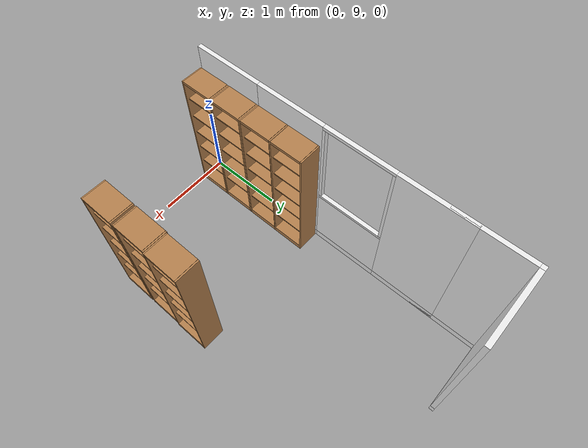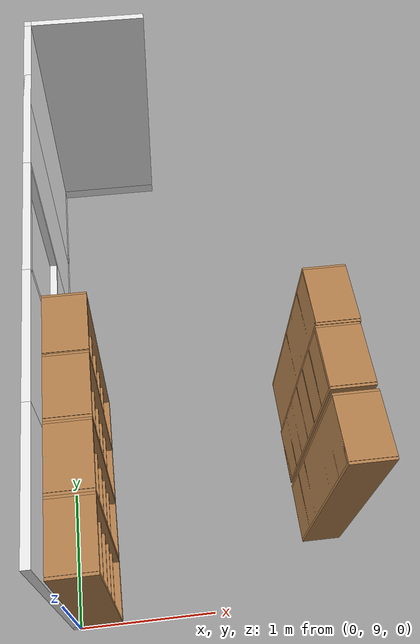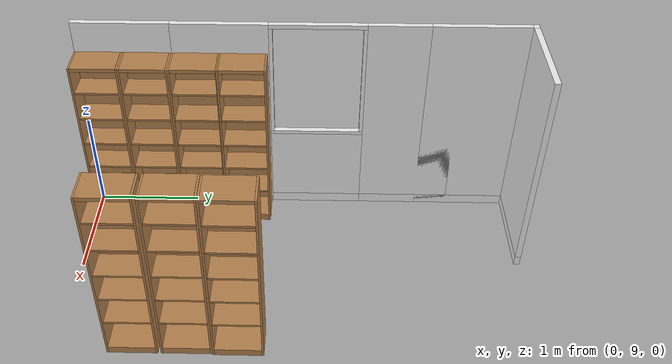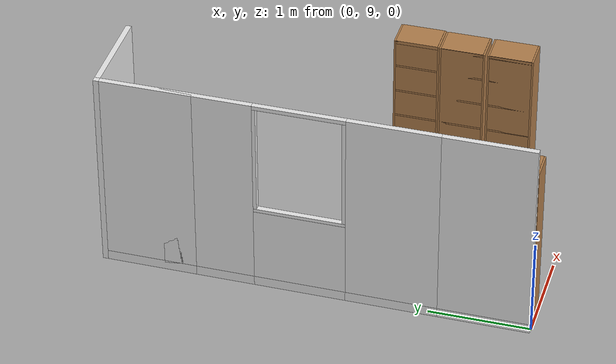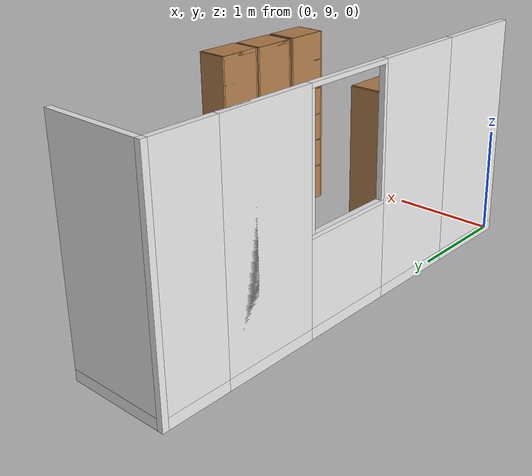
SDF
<sdf version="1.6">
 <world name="robocup_apartment">
  <model name="wall_x00y11">
   <link name="link">
    <inertial>
     <mass>50</mass>
     <inertia><ixx>1</ixx><ixy>0</ixy><ixz>0</ixz><iyy>1</iyy><iyz>0</iyz><izz>1</izz></inertia>
    </inertial>
    <visual name="bottom_frame">
     <pose>0 0 0.05 0 -0 0</pose>
     <geometry><box><size>0.055 0.9 0.1</size></box></geometry>
     <material>
      <script><uri>model://base_materials/color/scripts</uri><name>hsr_color/white</name></script>
     </material>
    </visual>
    <visual name="wall">
     <pose>0 0 1.095 0 -0 0</pose>
     <geometry><box><size>0.055 0.9 1.99</size></box></geometry>
     <material>
      <script>
       <uri>model://base_materials/wall/scripts</uri>
       <uri>model://base_materials/wall/textures</uri>
       <name>wall/white_noise</name>
      </script>
     </material>
    </visual>
    <velocity_decay><linear>0</linear><angular>0</angular></velocity_decay>
   </link>
   <static>1</static>
   <pose>-0.0275 9.45 0 0 -0 0</pose>
  </model>
  <model name="wall_x00y12">
   <link name="link">
    <inertial>
     <mass>50</mass>
     <inertia><ixx>1</ixx><ixy>0</ixy><ixz>0</ixz><iyy>1</iyy><iyz>0</iyz><izz>1</izz></inertia>
    </inertial>
    <visual name="bottom_frame">
     <pose>0 0 0.05 0 -0 0</pose>
     <geometry><box><size>0.055 0.9 0.1</size></box></geometry>
     <material>
      <script><uri>model://base_materials/color/scripts</uri><name>hsr_color/white</name></script>
     </material>
    </visual>
    <visual name="wall">
     <pose>0 0 1.095 0 -0 0</pose>
     <geometry><box><size>0.055 0.9 1.99</size></box></geometry>
     <material>
      <script>
       <uri>model://base_materials/wall/scripts</uri>
       <uri>model://base_materials/wall/textures</uri>
       <name>wall/white_noise</name>
      </script>
     </material>
    </visual>
    <velocity_decay><linear>0</linear><angular>0</angular></velocity_decay>
   </link>
   <static>1</static>
   <pose>-0.0275 10.35 0 0 -0 0</pose>
  </model>
  <model name="wall_x00y13">
   <link name="link">
    <inertial>
     <mass>50</mass>
     <inertia><ixx>1</ixx><ixy>0</ixy><ixz>0</ixz><iyy>1</iyy><iyz>0</iyz><izz>1</izz></inertia>
    </inertial>
    <visual name="bottom_frame">
     <pose>0 0 0.05 0 -0 0</pose>
     <geometry><box><size>0.055 0.9 0.1</size></box></geometry>
     <material>
      <script><uri>model://base_materials/color/scripts</uri><name>hsr_color/white</name></script>
     </material>
    </visual>
    <visual name="wall">
     <pose>0 0 0.4875 0 -0 0</pose>
     <geometry><box><size>0.055 0.9 0.775</size></box></geometry>
     <material>
      <script>
       <uri>model://base_materials/wall/scripts</uri>
       <uri>model://base_materials/wall/textures</uri>
       <name>wall/white_noise</name>
      </script>
     </material>
    </visual>
    <visual name="center_frame">
     <pose>0 0 0.8925 0 -0 0</pose>
     <geometry><box><size>0.055 0.9 0.035</size></box></geometry>
     <material>
      <script><uri>model://base_materials/color/scripts</uri><name>hsr_color/white</name></script>
     </material>
    </visual>
    <visual name="right_frame">
     <pose>0 0.4325 1.48 0 -0 0</pose>
     <geometry><box><size>0.055 0.035 1.14</size></box></geometry>
     <material>
      <script><uri>model://base_materials/color/scripts</uri><name>hsr_color/white</name></script>
     </material>
    </visual>
    <visual name="left_frame">
     <pose>0 -0.4325 1.48 0 -0 0</pose>
     <geometry><box><size>0.055 0.035 1.14</size></box></geometry>
     <material>
      <script><uri>model://base_materials/color/scripts</uri><name>hsr_color/white</name></script>
     </material>
    </visual>
    <visual name="top_frame">
     <pose>0 0 2.07 0 -0 0</pose>
     <geometry><box><size>0.055 0.9 0.04</size></box></geometry>
     <material>
      <script><uri>model://base_materials/color/scripts</uri><name>hsr_color/white</name></script>
     </material>
    </visual>
    <velocity_decay><linear>0</linear><angular>0</angular></velocity_decay>
   </link>
   <static>1</static>
   <pose>-0.0275 11.25 0 0 -0 0</pose>
  </model>
  <model name="wall_x00y14">
   <link name="link">
    <inertial>
     <mass>50</mass>
     <inertia><ixx>1</ixx><ixy>0</ixy><ixz>0</ixz><iyy>1</iyy><iyz>0</iyz><izz>1</izz></inertia>
    </inertial>
    <visual name="bottom_frame">
     <pose>0 0 0.05 0 -0 0</pose>
     <geometry><box><size>0.055 0.9 0.1</size></box></geometry>
     <material>
      <script><uri>model://base_materials/color/scripts</uri><name>hsr_color/white</name></script>
     </material>
    </visual>
    <visual name="wall">
     <pose>0 0 1.095 0 -0 0</pose>
     <geometry><box><size>0.055 0.9 1.99</size></box></geometry>
     <material>
      <script>
       <uri>model://base_materials/wall/scripts</uri>
       <uri>model://base_materials/wall/textures</uri>
       <name>wall/white_noise</name>
      </script>
     </material>
    </visual>
    <velocity_decay><linear>0</linear><angular>0</angular></velocity_decay>
   </link>
   <static>1</static>
   <pose>-0.0275 12.15 0 0 -0 0</pose>
  </model>
  <model name="wall_x00y15">
   <link name="link">
    <inertial>
     <mass>50</mass>
     <inertia><ixx>1</ixx><ixy>0</ixy><ixz>0</ixz><iyy>1</iyy><iyz>0</iyz><izz>1</izz></inertia>
    </inertial>
    <visual name="bottom_frame">
     <pose>0 0 0.05 0 -0 0</pose>
     <geometry><box><size>0.055 0.9 0.1</size></box></geometry>
     <material>
      <script><uri>model://base_materials/color/scripts</uri><name>hsr_color/white</name></script>
     </material>
    </visual>
    <visual name="wall">
     <pose>0 0 1.095 0 -0 0</pose>
     <geometry><box><size>0.055 0.9 1.99</size></box></geometry>
     <material>
      <script>
       <uri>model://base_materials/wall/scripts</uri>
       <uri>model://base_materials/wall/textures</uri>
       <name>wall/white_noise</name>
      </script>
     </material>
    </visual>
    <velocity_decay><linear>0</linear><angular>0</angular></velocity_decay>
   </link>
   <static>1</static>
   <pose>-0.0275 12.73 0 0 -0 0</pose>
  </model>
  <model name="wall_x00y16">
   <link name="link">
    <inertial>
     <mass>50</mass>
     <inertia><ixx>1</ixx><ixy>0</ixy><ixz>0</ixz><iyy>1</iyy><iyz>0</iyz><izz>1</izz></inertia>
    </inertial>
    <visual name="_frame">
     <pose>0 0 1.045 0 -0 0</pose>
     <geometry><box><size>0.055 0.055 2.09</size></box></geometry>
     <material>
      <script><uri>model://base_materials/color/scripts</uri><name>hsr_color/white</name></script>
     </material>
    </visual>
    <velocity_decay><linear>0</linear><angular>0</angular></velocity_decay>
   </link>
   <static>1</static>
   <pose>-0.0275 13.2075 0 0 -0 0</pose>
  </model>
  <model name="wall_x01y16">
   <link name="link">
    <inertial>
     <mass>50</mass>
     <inertia><ixx>1</ixx><ixy>0</ixy><ixz>0</ixz><iyy>1</iyy><iyz>0</iyz><izz>1</izz></inertia>
    </inertial>
    <visual name="bottom_frame">
     <pose>0 0 0.05 0 -0 0</pose>
     <geometry><box><size>0.055 0.9 0.1</size></box></geometry>
     <material>
      <script><uri>model://base_materials/color/scripts</uri><name>hsr_color/white</name></script>
     </material>
    </visual>
    <visual name="wall">
     <pose>0 0 1.095 0 -0 0</pose>
     <geometry><box><size>0.055 0.9 1.99</size></box></geometry>
     <material>
      <script>
       <uri>model://base_materials/wall/scripts</uri>
       <uri>model://base_materials/wall/textures</uri>
       <name>wall/white_noise</name>
      </script>
     </material>
    </visual>
    <velocity_decay><linear>0</linear><angular>0</angular></velocity_decay>
   </link>
   <static>1</static>
   <pose>0.45 13.2075 0 0 -0 1.5708</pose>
  </model>
  <model name="high_shelf05">
   <link name="link">
    <inertial>
     <mass>5</mass>
     <inertia><ixx>1</ixx><ixy>0</ixy><ixz>0</ixz><iyy>1</iyy><iyz>0</iyz><izz>1</izz></inertia>
    </inertial>
    <visual name="left_board">
     <pose>-0.1475 0.009 0.898 0 -0 0</pose>
     <geometry><box><size>0.295 0.018 1.796</size></box></geometry>
     <material>
      <script>
       <uri>model://base_materials/wood/scripts</uri>
       <uri>model://base_materials/wood/textures</uri>
       <name>base_materials/light_wood</name>
      </script>
     </material>
    </visual>
    <collision name="collision_left_board">
     <pose>-0.1475 0.009 0.898 0 -0 0</pose>
     <geometry><box><size>0.295 0.018 1.796</size></box></geometry>
    </collision>
    <visual name="right_board">
     <pose>-0.1475 0.441 0.898 0 -0 0</pose>
     <geometry><box><size>0.295 0.018 1.796</size></box></geometry>
     <material>
      <script>
       <uri>model://base_materials/wood/scripts</uri>
       <uri>model://base_materials/wood/textures</uri>
       <name>base_materials/light_wood</name>
      </script>
     </material>
    </visual>
    <collision name="collision_right_board">
     <pose>-0.1475 0.441 0.898 0 -0 0</pose>
     <geometry><box><size>0.295 0.018 1.796</size></box></geometry>
    </collision>
    <visual name="top_board">
     <pose>-0.1475 0.225 1.7825 0 -0 0</pose>
     <geometry><box><size>0.295 0.414 0.035</size></box></geometry>
     <material>
      <script>
       <uri>model://base_materials/wood/scripts</uri>
       <uri>model://base_materials/wood/textures</uri>
       <name>base_materials/light_wood</name>
      </script>
     </material>
    </visual>
    <collision name="collision_top_board">
     <pose>-0.1475 0.225 1.7825 0 -0 0</pose>
     <geometry><box><size>0.295 0.414 0.035</size></box></geometry>
    </collision>
    <visual name="1st_shelf">
     <pose>-0.162 0.225 1.51 0 -0 0</pose>
     <geometry><box><size>0.266 0.414 0.018</size></box></geometry>
     <material>
      <script>
       <uri>model://base_materials/wood/scripts</uri>
       <uri>model://base_materials/wood/textures</uri>
       <name>base_materials/light_wood</name>
      </script>
     </material>
    </visual>
    <collision name="collision_1st_shelf">
     <pose>-0.162 0.225 1.51 0 -0 0</pose>
     <geometry><box><size>0.266 0.414 0.018</size></box></geometry>
    </collision>
    <visual name="2nd_shelf">
     <pose>-0.162 0.225 1.22 0 -0 0</pose>
     <geometry><box><size>0.266 0.414 0.018</size></box></geometry>
     <material>
      <script>
       <uri>model://base_materials/wood/scripts</uri>
       <uri>model://base_materials/wood/textures</uri>
       <name>base_materials/light_wood</name>
      </script>
     </material>
    </visual>
    <collision name="collision_2nd_shelf">
     <pose>-0.162 0.225 1.22 0 -0 0</pose>
     <geometry><box><size>0.266 0.414 0.018</size></box></geometry>
    </collision>
    <visual name="3rd_shelf">
     <pose>-0.162 0.225 0.93 0 -0 0</pose>
     <geometry><box><size>0.266 0.414 0.018</size></box></geometry>
     <material>
      <script>
       <uri>model://base_materials/wood/scripts</uri>
       <uri>model://base_materials/wood/textures</uri>
       <name>base_materials/light_wood</name>
      </script>
     </material>
    </visual>
    <collision name="collision_3rd_shelf">
     <pose>-0.162 0.225 0.93 0 -0 0</pose>
     <geometry><box><size>0.266 0.414 0.018</size></box></geometry>
    </collision>
    <visual name="4th_shelf">
     <pose>-0.162 0.225 0.65 0 -0 0</pose>
     <geometry><box><size>0.266 0.414 0.018</size></box></geometry>
     <material>
      <script>
       <uri>model://base_materials/wood/scripts</uri>
       <uri>model://base_materials/wood/textures</uri>
       <name>base_materials/light_wood</name>
      </script>
     </material>
    </visual>
    <collision name="collision_4th_shelf">
     <pose>-0.162 0.225 0.65 0 -0 0</pose>
     <geometry><box><size>0.266 0.414 0.018</size></box></geometry>
    </collision>
    <visual name="5th_shelf">
     <pose>-0.162 0.225 0.36 0 -0 0</pose>
     <geometry><box><size>0.266 0.414 0.018</size></box></geometry>
     <material>
      <script>
       <uri>model://base_materials/wood/scripts</uri>
       <uri>model://base_materials/wood/textures</uri>
       <name>base_materials/light_wood</name>
      </script>
     </material>
    </visual>
    <collision name="collision_5th_shelf">
     <pose>-0.162 0.225 0.36 0 -0 0</pose>
     <geometry><box><size>0.266 0.414 0.018</size></box></geometry>
    </collision>
    <visual name="bottom_board">
     <pose>-0.1475 0.225 0.035 0 -0 0</pose>
     <geometry><box><size>0.295 0.414 0.07</size></box></geometry>
     <material>
      <script>
       <uri>model://base_materials/wood/scripts</uri>
       <uri>model://base_materials/wood/textures</uri>
       <name>base_materials/light_wood</name>
      </script>
     </material>
    </visual>
    <collision name="collision_bottom_board">
     <pose>-0.1475 0.225 0.035 0 -0 0</pose>
     <geometry><box><size>0.295 0.414 0.07</size></box></geometry>
    </collision>
    <visual name="back_board">
     <pose>-0.286 0.225 0.898 0 -0 0</pose>
     <geometry><box><size>0.018 0.414 1.796</size></box></geometry>
     <material>
      <script>
       <uri>model://base_materials/wood/scripts</uri>
       <uri>model://base_materials/wood/textures</uri>
       <name>base_materials/light_wood</name>
      </script>
     </material>
    </visual>
    <collision name="collision_back_board">
     <pose>-0.286 0.225 0.898 0 -0 0</pose>
     <geometry><box><size>0.018 0.414 1.796</size></box></geometry>
    </collision>
    <velocity_decay><linear>0</linear><angular>0</angular></velocity_decay>
   </link>
   <static>1</static>
   <pose>0.31 9 0 0 -0 0</pose>
  </model>
  <model name="high_shelf06">
   <link name="link">
    <inertial>
     <mass>5</mass>
     <inertia><ixx>1</ixx><ixy>0</ixy><ixz>0</ixz><iyy>1</iyy><iyz>0</iyz><izz>1</izz></inertia>
    </inertial>
    <visual name="left_board">
     <pose>-0.1475 0.009 0.898 0 -0 0</pose>
     <geometry><box><size>0.295 0.018 1.796</size></box></geometry>
     <material>
      <script>
       <uri>model://base_materials/wood/scripts</uri>
       <uri>model://base_materials/wood/textures</uri>
       <name>base_materials/light_wood</name>
      </script>
     </material>
    </visual>
    <collision name="collision_left_board">
     <pose>-0.1475 0.009 0.898 0 -0 0</pose>
     <geometry><box><size>0.295 0.018 1.796</size></box></geometry>
    </collision>
    <visual name="right_board">
     <pose>-0.1475 0.441 0.898 0 -0 0</pose>
     <geometry><box><size>0.295 0.018 1.796</size></box></geometry>
     <material>
      <script>
       <uri>model://base_materials/wood/scripts</uri>
       <uri>model://base_materials/wood/textures</uri>
       <name>base_materials/light_wood</name>
      </script>
     </material>
    </visual>
    <collision name="collision_right_board">
     <pose>-0.1475 0.441 0.898 0 -0 0</pose>
     <geometry><box><size>0.295 0.018 1.796</size></box></geometry>
    </collision>
    <visual name="top_board">
     <pose>-0.1475 0.225 1.7825 0 -0 0</pose>
     <geometry><box><size>0.295 0.414 0.035</size></box></geometry>
     <material>
      <script>
       <uri>model://base_materials/wood/scripts</uri>
       <uri>model://base_materials/wood/textures</uri>
       <name>base_materials/light_wood</name>
      </script>
     </material>
    </visual>
    <collision name="collision_top_board">
     <pose>-0.1475 0.225 1.7825 0 -0 0</pose>
     <geometry><box><size>0.295 0.414 0.035</size></box></geometry>
    </collision>
    <visual name="1st_shelf">
     <pose>-0.162 0.225 1.51 0 -0 0</pose>
     <geometry><box><size>0.266 0.414 0.018</size></box></geometry>
     <material>
      <script>
       <uri>model://base_materials/wood/scripts</uri>
       <uri>model://base_materials/wood/textures</uri>
       <name>base_materials/light_wood</name>
      </script>
     </material>
    </visual>
    <collision name="collision_1st_shelf">
     <pose>-0.162 0.225 1.51 0 -0 0</pose>
     <geometry><box><size>0.266 0.414 0.018</size></box></geometry>
    </collision>
    <visual name="2nd_shelf">
     <pose>-0.162 0.225 1.22 0 -0 0</pose>
     <geometry><box><size>0.266 0.414 0.018</size></box></geometry>
     <material>
      <script>
       <uri>model://base_materials/wood/scripts</uri>
       <uri>model://base_materials/wood/textures</uri>
       <name>base_materials/light_wood</name>
      </script>
     </material>
    </visual>
    <collision name="collision_2nd_shelf">
     <pose>-0.162 0.225 1.22 0 -0 0</pose>
     <geometry><box><size>0.266 0.414 0.018</size></box></geometry>
    </collision>
    <visual name="3rd_shelf">
     <pose>-0.162 0.225 0.93 0 -0 0</pose>
     <geometry><box><size>0.266 0.414 0.018</size></box></geometry>
     <material>
      <script>
       <uri>model://base_materials/wood/scripts</uri>
       <uri>model://base_materials/wood/textures</uri>
       <name>base_materials/light_wood</name>
      </script>
     </material>
    </visual>
    <collision name="collision_3rd_shelf">
     <pose>-0.162 0.225 0.93 0 -0 0</pose>
     <geometry><box><size>0.266 0.414 0.018</size></box></geometry>
    </collision>
    <visual name="4th_shelf">
     <pose>-0.162 0.225 0.65 0 -0 0</pose>
     <geometry><box><size>0.266 0.414 0.018</size></box></geometry>
     <material>
      <script>
       <uri>model://base_materials/wood/scripts</uri>
       <uri>model://base_materials/wood/textures</uri>
       <name>base_materials/light_wood</name>
      </script>
     </material>
    </visual>
    <collision name="collision_4th_shelf">
     <pose>-0.162 0.225 0.65 0 -0 0</pose>
     <geometry><box><size>0.266 0.414 0.018</size></box></geometry>
    </collision>
    <visual name="5th_shelf">
     <pose>-0.162 0.225 0.36 0 -0 0</pose>
     <geometry><box><size>0.266 0.414 0.018</size></box></geometry>
     <material>
      <script>
       <uri>model://base_materials/wood/scripts</uri>
       <uri>model://base_materials/wood/textures</uri>
       <name>base_materials/light_wood</name>
      </script>
     </material>
    </visual>
    <collision name="collision_5th_shelf">
     <pose>-0.162 0.225 0.36 0 -0 0</pose>
     <geometry><box><size>0.266 0.414 0.018</size></box></geometry>
    </collision>
    <visual name="bottom_board">
     <pose>-0.1475 0.225 0.035 0 -0 0</pose>
     <geometry><box><size>0.295 0.414 0.07</size></box></geometry>
     <material>
      <script>
       <uri>model://base_materials/wood/scripts</uri>
       <uri>model://base_materials/wood/textures</uri>
       <name>base_materials/light_wood</name>
      </script>
     </material>
    </visual>
    <collision name="collision_bottom_board">
     <pose>-0.1475 0.225 0.035 0 -0 0</pose>
     <geometry><box><size>0.295 0.414 0.07</size></box></geometry>
    </collision>
    <visual name="back_board">
     <pose>-0.286 0.225 0.898 0 -0 0</pose>
     <geometry><box><size>0.018 0.414 1.796</size></box></geometry>
     <material>
      <script>
       <uri>model://base_materials/wood/scripts</uri>
       <uri>model://base_materials/wood/textures</uri>
       <name>base_materials/light_wood</name>
      </script>
     </material>
    </visual>
    <collision name="collision_back_board">
     <pose>-0.286 0.225 0.898 0 -0 0</pose>
     <geometry><box><size>0.018 0.414 1.796</size></box></geometry>
    </collision>
    <velocity_decay><linear>0</linear><angular>0</angular></velocity_decay>
   </link>
   <static>1</static>
   <pose>0.31 9.45 0 0 -0 0</pose>
  </model>
  <model name="high_shelf07">
   <link name="link">
    <inertial>
     <mass>5</mass>
     <inertia><ixx>1</ixx><ixy>0</ixy><ixz>0</ixz><iyy>1</iyy><iyz>0</iyz><izz>1</izz></inertia>
    </inertial>
    <visual name="left_board">
     <pose>-0.1475 0.009 0.898 0 -0 0</pose>
     <geometry><box><size>0.295 0.018 1.796</size></box></geometry>
     <material>
      <script>
       <uri>model://base_materials/wood/scripts</uri>
       <uri>model://base_materials/wood/textures</uri>
       <name>base_materials/light_wood</name>
      </script>
     </material>
    </visual>
    <collision name="collision_left_board">
     <pose>-0.1475 0.009 0.898 0 -0 0</pose>
     <geometry><box><size>0.295 0.018 1.796</size></box></geometry>
    </collision>
    <visual name="right_board">
     <pose>-0.1475 0.441 0.898 0 -0 0</pose>
     <geometry><box><size>0.295 0.018 1.796</size></box></geometry>
     <material>
      <script>
       <uri>model://base_materials/wood/scripts</uri>
       <uri>model://base_materials/wood/textures</uri>
       <name>base_materials/light_wood</name>
      </script>
     </material>
    </visual>
    <collision name="collision_right_board">
     <pose>-0.1475 0.441 0.898 0 -0 0</pose>
     <geometry><box><size>0.295 0.018 1.796</size></box></geometry>
    </collision>
    <visual name="top_board">
     <pose>-0.1475 0.225 1.7825 0 -0 0</pose>
     <geometry><box><size>0.295 0.414 0.035</size></box></geometry>
     <material>
      <script>
       <uri>model://base_materials/wood/scripts</uri>
       <uri>model://base_materials/wood/textures</uri>
       <name>base_materials/light_wood</name>
      </script>
     </material>
    </visual>
    <collision name="collision_top_board">
     <pose>-0.1475 0.225 1.7825 0 -0 0</pose>
     <geometry><box><size>0.295 0.414 0.035</size></box></geometry>
    </collision>
    <visual name="1st_shelf">
     <pose>-0.162 0.225 1.51 0 -0 0</pose>
     <geometry><box><size>0.266 0.414 0.018</size></box></geometry>
     <material>
      <script>
       <uri>model://base_materials/wood/scripts</uri>
       <uri>model://base_materials/wood/textures</uri>
       <name>base_materials/light_wood</name>
      </script>
     </material>
    </visual>
    <collision name="collision_1st_shelf">
     <pose>-0.162 0.225 1.51 0 -0 0</pose>
     <geometry><box><size>0.266 0.414 0.018</size></box></geometry>
    </collision>
    <visual name="2nd_shelf">
     <pose>-0.162 0.225 1.22 0 -0 0</pose>
     <geometry><box><size>0.266 0.414 0.018</size></box></geometry>
     <material>
      <script>
       <uri>model://base_materials/wood/scripts</uri>
       <uri>model://base_materials/wood/textures</uri>
       <name>base_materials/light_wood</name>
      </script>
     </material>
    </visual>
    <collision name="collision_2nd_shelf">
     <pose>-0.162 0.225 1.22 0 -0 0</pose>
     <geometry><box><size>0.266 0.414 0.018</size></box></geometry>
    </collision>
    <visual name="3rd_shelf">
     <pose>-0.162 0.225 0.93 0 -0 0</pose>
     <geometry><box><size>0.266 0.414 0.018</size></box></geometry>
     <material>
      <script>
       <uri>model://base_materials/wood/scripts</uri>
       <uri>model://base_materials/wood/textures</uri>
       <name>base_materials/light_wood</name>
      </script>
     </material>
    </visual>
    <collision name="collision_3rd_shelf">
     <pose>-0.162 0.225 0.93 0 -0 0</pose>
     <geometry><box><size>0.266 0.414 0.018</size></box></geometry>
    </collision>
    <visual name="4th_shelf">
     <pose>-0.162 0.225 0.65 0 -0 0</pose>
     <geometry><box><size>0.266 0.414 0.018</size></box></geometry>
     <material>
      <script>
       <uri>model://base_materials/wood/scripts</uri>
       <uri>model://base_materials/wood/textures</uri>
       <name>base_materials/light_wood</name>
      </script>
     </material>
    </visual>
    <collision name="collision_4th_shelf">
     <pose>-0.162 0.225 0.65 0 -0 0</pose>
     <geometry><box><size>0.266 0.414 0.018</size></box></geometry>
    </collision>
    <visual name="5th_shelf">
     <pose>-0.162 0.225 0.36 0 -0 0</pose>
     <geometry><box><size>0.266 0.414 0.018</size></box></geometry>
     <material>
      <script>
       <uri>model://base_materials/wood/scripts</uri>
       <uri>model://base_materials/wood/textures</uri>
       <name>base_materials/light_wood</name>
      </script>
     </material>
    </visual>
    <collision name="collision_5th_shelf">
     <pose>-0.162 0.225 0.36 0 -0 0</pose>
     <geometry><box><size>0.266 0.414 0.018</size></box></geometry>
    </collision>
    <visual name="bottom_board">
     <pose>-0.1475 0.225 0.035 0 -0 0</pose>
     <geometry><box><size>0.295 0.414 0.07</size></box></geometry>
     <material>
      <script>
       <uri>model://base_materials/wood/scripts</uri>
       <uri>model://base_materials/wood/textures</uri>
       <name>base_materials/light_wood</name>
      </script>
     </material>
    </visual>
    <collision name="collision_bottom_board">
     <pose>-0.1475 0.225 0.035 0 -0 0</pose>
     <geometry><box><size>0.295 0.414 0.07</size></box></geometry>
    </collision>
    <visual name="back_board">
     <pose>-0.286 0.225 0.898 0 -0 0</pose>
     <geometry><box><size>0.018 0.414 1.796</size></box></geometry>
     <material>
      <script>
       <uri>model://base_materials/wood/scripts</uri>
       <uri>model://base_materials/wood/textures</uri>
       <name>base_materials/light_wood</name>
      </script>
     </material>
    </visual>
    <collision name="collision_back_board">
     <pose>-0.286 0.225 0.898 0 -0 0</pose>
     <geometry><box><size>0.018 0.414 1.796</size></box></geometry>
    </collision>
    <velocity_decay><linear>0</linear><angular>0</angular></velocity_decay>
   </link>
   <static>1</static>
   <pose>0.31 9.9 0 0 -0 0</pose>
  </model>
  <model name="high_shelf07_clone">
   <link name="link">
    <inertial>
     <mass>5</mass>
     <inertia><ixx>1</ixx><ixy>0</ixy><ixz>0</ixz><iyy>1</iyy><iyz>0</iyz><izz>1</izz></inertia>
    </inertial>
    <visual name="left_board">
     <pose>-0.1475 0.009 0.898 0 -0 0</pose>
     <geometry><box><size>0.295 0.018 1.796</size></box></geometry>
     <material>
      <script>
       <uri>model://base_materials/wood/scripts</uri>
       <uri>model://base_materials/wood/textures</uri>
       <name>base_materials/light_wood</name>
      </script>
     </material>
    </visual>
    <collision name="collision_left_board">
     <pose>-0.1475 0.009 0.898 0 -0 0</pose>
     <geometry><box><size>0.295 0.018 1.796</size></box></geometry>
    </collision>
    <visual name="right_board">
     <pose>-0.1475 0.441 0.898 0 -0 0</pose>
     <geometry><box><size>0.295 0.018 1.796</size></box></geometry>
     <material>
      <script>
       <uri>model://base_materials/wood/scripts</uri>
       <uri>model://base_materials/wood/textures</uri>
       <name>base_materials/light_wood</name>
      </script>
     </material>
    </visual>
    <collision name="collision_right_board">
     <pose>-0.1475 0.441 0.898 0 -0 0</pose>
     <geometry><box><size>0.295 0.018 1.796</size></box></geometry>
    </collision>
    <visual name="top_board">
     <pose>-0.1475 0.225 1.7825 0 -0 0</pose>
     <geometry><box><size>0.295 0.414 0.035</size></box></geometry>
     <material>
      <script>
       <uri>model://base_materials/wood/scripts</uri>
       <uri>model://base_materials/wood/textures</uri>
       <name>base_materials/light_wood</name>
      </script>
     </material>
    </visual>
    <collision name="collision_top_board">
     <pose>-0.1475 0.225 1.7825 0 -0 0</pose>
     <geometry><box><size>0.295 0.414 0.035</size></box></geometry>
    </collision>
    <visual name="1st_shelf">
     <pose>-0.162 0.225 1.51 0 -0 0</pose>
     <geometry><box><size>0.266 0.414 0.018</size></box></geometry>
     <material>
      <script>
       <uri>model://base_materials/wood/scripts</uri>
       <uri>model://base_materials/wood/textures</uri>
       <name>base_materials/light_wood</name>
      </script>
     </material>
    </visual>
    <collision name="collision_1st_shelf">
     <pose>-0.162 0.225 1.51 0 -0 0</pose>
     <geometry><box><size>0.266 0.414 0.018</size></box></geometry>
    </collision>
    <visual name="2nd_shelf">
     <pose>-0.162 0.225 1.22 0 -0 0</pose>
     <geometry><box><size>0.266 0.414 0.018</size></box></geometry>
     <material>
      <script>
       <uri>model://base_materials/wood/scripts</uri>
       <uri>model://base_materials/wood/textures</uri>
       <name>base_materials/light_wood</name>
      </script>
     </material>
    </visual>
    <collision name="collision_2nd_shelf">
     <pose>-0.162 0.225 1.22 0 -0 0</pose>
     <geometry><box><size>0.266 0.414 0.018</size></box></geometry>
    </collision>
    <visual name="3rd_shelf">
     <pose>-0.162 0.225 0.93 0 -0 0</pose>
     <geometry><box><size>0.266 0.414 0.018</size></box></geometry>
     <material>
      <script>
       <uri>model://base_materials/wood/scripts</uri>
       <uri>model://base_materials/wood/textures</uri>
       <name>base_materials/light_wood</name>
      </script>
     </material>
    </visual>
    <collision name="collision_3rd_shelf">
     <pose>-0.162 0.225 0.93 0 -0 0</pose>
     <geometry><box><size>0.266 0.414 0.018</size></box></geometry>
    </collision>
    <visual name="4th_shelf">
     <pose>-0.162 0.225 0.65 0 -0 0</pose>
     <geometry><box><size>0.266 0.414 0.018</size></box></geometry>
     <material>
      <script>
       <uri>model://base_materials/wood/scripts</uri>
       <uri>model://base_materials/wood/textures</uri>
       <name>base_materials/light_wood</name>
      </script>
     </material>
    </visual>
    <collision name="collision_4th_shelf">
     <pose>-0.162 0.225 0.65 0 -0 0</pose>
     <geometry><box><size>0.266 0.414 0.018</size></box></geometry>
    </collision>
    <visual name="5th_shelf">
     <pose>-0.162 0.225 0.36 0 -0 0</pose>
     <geometry><box><size>0.266 0.414 0.018</size></box></geometry>
     <material>
      <script>
       <uri>model://base_materials/wood/scripts</uri>
       <uri>model://base_materials/wood/textures</uri>
       <name>base_materials/light_wood</name>
      </script>
     </material>
    </visual>
    <collision name="collision_5th_shelf">
     <pose>-0.162 0.225 0.36 0 -0 0</pose>
     <geometry><box><size>0.266 0.414 0.018</size></box></geometry>
    </collision>
    <visual name="bottom_board">
     <pose>-0.1475 0.225 0.035 0 -0 0</pose>
     <geometry><box><size>0.295 0.414 0.07</size></box></geometry>
     <material>
      <script>
       <uri>model://base_materials/wood/scripts</uri>
       <uri>model://base_materials/wood/textures</uri>
       <name>base_materials/light_wood</name>
      </script>
     </material>
    </visual>
    <collision name="collision_bottom_board">
     <pose>-0.1475 0.225 0.035 0 -0 0</pose>
     <geometry><box><size>0.295 0.414 0.07</size></box></geometry>
    </collision>
    <visual name="back_board">
     <pose>-0.286 0.225 0.898 0 -0 0</pose>
     <geometry><box><size>0.018 0.414 1.796</size></box></geometry>
     <material>
      <script>
       <uri>model://base_materials/wood/scripts</uri>
       <uri>model://base_materials/wood/textures</uri>
       <name>base_materials/light_wood</name>
      </script>
     </material>
    </visual>
    <collision name="collision_back_board">
     <pose>-0.286 0.225 0.898 0 -0 0</pose>
     <geometry><box><size>0.018 0.414 1.796</size></box></geometry>
    </collision>
    <velocity_decay><linear>0</linear><angular>0</angular></velocity_decay>
   </link>
   <static>1</static>
   <pose>0.311103 10.3387 0 0 -0 0</pose>
  </model>
  <model name="high_shelf05_clone_1">
   <link name="link">
    <inertial>
     <mass>5</mass>
     <inertia><ixx>1</ixx><ixy>0</ixy><ixz>0</ixz><iyy>1</iyy><iyz>0</iyz><izz>1</izz></inertia>
    </inertial>
    <visual name="left_board">
     <pose>-0.1475 0.009 0.898 0 -0 0</pose>
     <geometry><box><size>0.295 0.018 1.796</size></box></geometry>
     <material>
      <script>
       <uri>model://base_materials/wood/scripts</uri>
       <uri>model://base_materials/wood/textures</uri>
       <name>base_materials/light_wood</name>
      </script>
     </material>
    </visual>
    <collision name="collision_left_board">
     <pose>-0.1475 0.009 0.898 0 -0 0</pose>
     <geometry><box><size>0.295 0.018 1.796</size></box></geometry>
    </collision>
    <visual name="right_board">
     <pose>-0.1475 0.441 0.898 0 -0 0</pose>
     <geometry><box><size>0.295 0.018 1.796</size></box></geometry>
     <material>
      <script>
       <uri>model://base_materials/wood/scripts</uri>
       <uri>model://base_materials/wood/textures</uri>
       <name>base_materials/light_wood</name>
      </script>
     </material>
    </visual>
    <collision name="collision_right_board">
     <pose>-0.1475 0.441 0.898 0 -0 0</pose>
     <geometry><box><size>0.295 0.018 1.796</size></box></geometry>
    </collision>
    <visual name="top_board">
     <pose>-0.1475 0.225 1.7825 0 -0 0</pose>
     <geometry><box><size>0.295 0.414 0.035</size></box></geometry>
     <material>
      <script>
       <uri>model://base_materials/wood/scripts</uri>
       <uri>model://base_materials/wood/textures</uri>
       <name>base_materials/light_wood</name>
      </script>
     </material>
    </visual>
    <collision name="collision_top_board">
     <pose>-0.1475 0.225 1.7825 0 -0 0</pose>
     <geometry><box><size>0.295 0.414 0.035</size></box></geometry>
    </collision>
    <visual name="1st_shelf">
     <pose>-0.162 0.225 1.51 0 -0 0</pose>
     <geometry><box><size>0.266 0.414 0.018</size></box></geometry>
     <material>
      <script>
       <uri>model://base_materials/wood/scripts</uri>
       <uri>model://base_materials/wood/textures</uri>
       <name>base_materials/light_wood</name>
      </script>
     </material>
    </visual>
    <collision name="collision_1st_shelf">
     <pose>-0.162 0.225 1.51 0 -0 0</pose>
     <geometry><box><size>0.266 0.414 0.018</size></box></geometry>
    </collision>
    <visual name="2nd_shelf">
     <pose>-0.162 0.225 1.22 0 -0 0</pose>
     <geometry><box><size>0.266 0.414 0.018</size></box></geometry>
     <material>
      <script>
       <uri>model://base_materials/wood/scripts</uri>
       <uri>model://base_materials/wood/textures</uri>
       <name>base_materials/light_wood</name>
      </script>
     </material>
    </visual>
    <collision name="collision_2nd_shelf">
     <pose>-0.162 0.225 1.22 0 -0 0</pose>
     <geometry><box><size>0.266 0.414 0.018</size></box></geometry>
    </collision>
    <visual name="3rd_shelf">
     <pose>-0.162 0.225 0.93 0 -0 0</pose>
     <geometry><box><size>0.266 0.414 0.018</size></box></geometry>
     <material>
      <script>
       <uri>model://base_materials/wood/scripts</uri>
       <uri>model://base_materials/wood/textures</uri>
       <name>base_materials/light_wood</name>
      </script>
     </material>
    </visual>
    <collision name="collision_3rd_shelf">
     <pose>-0.162 0.225 0.93 0 -0 0</pose>
     <geometry><box><size>0.266 0.414 0.018</size></box></geometry>
    </collision>
    <visual name="4th_shelf">
     <pose>-0.162 0.225 0.65 0 -0 0</pose>
     <geometry><box><size>0.266 0.414 0.018</size></box></geometry>
     <material>
      <script>
       <uri>model://base_materials/wood/scripts</uri>
       <uri>model://base_materials/wood/textures</uri>
       <name>base_materials/light_wood</name>
      </script>
     </material>
    </visual>
    <collision name="collision_4th_shelf">
     <pose>-0.162 0.225 0.65 0 -0 0</pose>
     <geometry><box><size>0.266 0.414 0.018</size></box></geometry>
    </collision>
    <visual name="5th_shelf">
     <pose>-0.162 0.225 0.36 0 -0 0</pose>
     <geometry><box><size>0.266 0.414 0.018</size></box></geometry>
     <material>
      <script>
       <uri>model://base_materials/wood/scripts</uri>
       <uri>model://base_materials/wood/textures</uri>
       <name>base_materials/light_wood</name>
      </script>
     </material>
    </visual>
    <collision name="collision_5th_shelf">
     <pose>-0.162 0.225 0.36 0 -0 0</pose>
     <geometry><box><size>0.266 0.414 0.018</size></box></geometry>
    </collision>
    <visual name="bottom_board">
     <pose>-0.1475 0.225 0.035 0 -0 0</pose>
     <geometry><box><size>0.295 0.414 0.07</size></box></geometry>
     <material>
      <script>
       <uri>model://base_materials/wood/scripts</uri>
       <uri>model://base_materials/wood/textures</uri>
       <name>base_materials/light_wood</name>
      </script>
     </material>
    </visual>
    <collision name="collision_bottom_board">
     <pose>-0.1475 0.225 0.035 0 -0 0</pose>
     <geometry><box><size>0.295 0.414 0.07</size></box></geometry>
    </collision>
    <visual name="back_board">
     <pose>-0.286 0.225 0.898 0 -0 0</pose>
     <geometry><box><size>0.018 0.414 1.796</size></box></geometry>
     <material>
      <script>
       <uri>model://base_materials/wood/scripts</uri>
       <uri>model://base_materials/wood/textures</uri>
       <name>base_materials/light_wood</name>
      </script>
     </material>
    </visual>
    <collision name="collision_back_board">
     <pose>-0.286 0.225 0.898 0 -0 0</pose>
     <geometry><box><size>0.018 0.414 1.796</size></box></geometry>
    </collision>
    <velocity_decay><linear>0</linear><angular>0</angular></velocity_decay>
   </link>
   <static>1</static>
   <pose>2.05823 10.3687 0 0 -0 0</pose>
  </model>
  <model name="high_shelf05_clone_2">
   <link name="link">
    <inertial>
     <mass>5</mass>
     <inertia><ixx>1</ixx><ixy>0</ixy><ixz>0</ixz><iyy>1</iyy><iyz>0</iyz><izz>1</izz></inertia>
    </inertial>
    <visual name="left_board">
     <pose>-0.1475 0.009 0.898 0 -0 0</pose>
     <geometry><box><size>0.295 0.018 1.796</size></box></geometry>
     <material>
      <script>
       <uri>model://base_materials/wood/scripts</uri>
       <uri>model://base_materials/wood/textures</uri>
       <name>base_materials/light_wood</name>
      </script>
     </material>
    </visual>
    <collision name="collision_left_board">
     <pose>-0.1475 0.009 0.898 0 -0 0</pose>
     <geometry><box><size>0.295 0.018 1.796</size></box></geometry>
    </collision>
    <visual name="right_board">
     <pose>-0.1475 0.441 0.898 0 -0 0</pose>
     <geometry><box><size>0.295 0.018 1.796</size></box></geometry>
     <material>
      <script>
       <uri>model://base_materials/wood/scripts</uri>
       <uri>model://base_materials/wood/textures</uri>
       <name>base_materials/light_wood</name>
      </script>
     </material>
    </visual>
    <collision name="collision_right_board">
     <pose>-0.1475 0.441 0.898 0 -0 0</pose>
     <geometry><box><size>0.295 0.018 1.796</size></box></geometry>
    </collision>
    <visual name="top_board">
     <pose>-0.1475 0.225 1.7825 0 -0 0</pose>
     <geometry><box><size>0.295 0.414 0.035</size></box></geometry>
     <material>
      <script>
       <uri>model://base_materials/wood/scripts</uri>
       <uri>model://base_materials/wood/textures</uri>
       <name>base_materials/light_wood</name>
      </script>
     </material>
    </visual>
    <collision name="collision_top_board">
     <pose>-0.1475 0.225 1.7825 0 -0 0</pose>
     <geometry><box><size>0.295 0.414 0.035</size></box></geometry>
    </collision>
    <visual name="1st_shelf">
     <pose>-0.162 0.225 1.51 0 -0 0</pose>
     <geometry><box><size>0.266 0.414 0.018</size></box></geometry>
     <material>
      <script>
       <uri>model://base_materials/wood/scripts</uri>
       <uri>model://base_materials/wood/textures</uri>
       <name>base_materials/light_wood</name>
      </script>
     </material>
    </visual>
    <collision name="collision_1st_shelf">
     <pose>-0.162 0.225 1.51 0 -0 0</pose>
     <geometry><box><size>0.266 0.414 0.018</size></box></geometry>
    </collision>
    <visual name="2nd_shelf">
     <pose>-0.162 0.225 1.22 0 -0 0</pose>
     <geometry><box><size>0.266 0.414 0.018</size></box></geometry>
     <material>
      <script>
       <uri>model://base_materials/wood/scripts</uri>
       <uri>model://base_materials/wood/textures</uri>
       <name>base_materials/light_wood</name>
      </script>
     </material>
    </visual>
    <collision name="collision_2nd_shelf">
     <pose>-0.162 0.225 1.22 0 -0 0</pose>
     <geometry><box><size>0.266 0.414 0.018</size></box></geometry>
    </collision>
    <visual name="3rd_shelf">
     <pose>-0.162 0.225 0.93 0 -0 0</pose>
     <geometry><box><size>0.266 0.414 0.018</size></box></geometry>
     <material>
      <script>
       <uri>model://base_materials/wood/scripts</uri>
       <uri>model://base_materials/wood/textures</uri>
       <name>base_materials/light_wood</name>
      </script>
     </material>
    </visual>
    <collision name="collision_3rd_shelf">
     <pose>-0.162 0.225 0.93 0 -0 0</pose>
     <geometry><box><size>0.266 0.414 0.018</size></box></geometry>
    </collision>
    <visual name="4th_shelf">
     <pose>-0.162 0.225 0.65 0 -0 0</pose>
     <geometry><box><size>0.266 0.414 0.018</size></box></geometry>
     <material>
      <script>
       <uri>model://base_materials/wood/scripts</uri>
       <uri>model://base_materials/wood/textures</uri>
       <name>base_materials/light_wood</name>
      </script>
     </material>
    </visual>
    <collision name="collision_4th_shelf">
     <pose>-0.162 0.225 0.65 0 -0 0</pose>
     <geometry><box><size>0.266 0.414 0.018</size></box></geometry>
    </collision>
    <visual name="5th_shelf">
     <pose>-0.162 0.225 0.36 0 -0 0</pose>
     <geometry><box><size>0.266 0.414 0.018</size></box></geometry>
     <material>
      <script>
       <uri>model://base_materials/wood/scripts</uri>
       <uri>model://base_materials/wood/textures</uri>
       <name>base_materials/light_wood</name>
      </script>
     </material>
    </visual>
    <collision name="collision_5th_shelf">
     <pose>-0.162 0.225 0.36 0 -0 0</pose>
     <geometry><box><size>0.266 0.414 0.018</size></box></geometry>
    </collision>
    <visual name="bottom_board">
     <pose>-0.1475 0.225 0.035 0 -0 0</pose>
     <geometry><box><size>0.295 0.414 0.07</size></box></geometry>
     <material>
      <script>
       <uri>model://base_materials/wood/scripts</uri>
       <uri>model://base_materials/wood/textures</uri>
       <name>base_materials/light_wood</name>
      </script>
     </material>
    </visual>
    <collision name="collision_bottom_board">
     <pose>-0.1475 0.225 0.035 0 -0 0</pose>
     <geometry><box><size>0.295 0.414 0.07</size></box></geometry>
    </collision>
    <visual name="back_board">
     <pose>-0.286 0.225 0.898 0 -0 0</pose>
     <geometry><box><size>0.018 0.414 1.796</size></box></geometry>
     <material>
      <script>
       <uri>model://base_materials/wood/scripts</uri>
       <uri>model://base_materials/wood/textures</uri>
       <name>base_materials/light_wood</name>
      </script>
     </material>
    </visual>
    <collision name="collision_back_board">
     <pose>-0.286 0.225 0.898 0 -0 0</pose>
     <geometry><box><size>0.018 0.414 1.796</size></box></geometry>
    </collision>
    <velocity_decay><linear>0</linear><angular>0</angular></velocity_decay>
   </link>
   <static>1</static>
   <pose>2.04819 9.91635 0 0 -0 0</pose>
  </model>
  <model name="high_shelf05_clone_3">
   <link name="link">
    <inertial>
     <mass>5</mass>
     <inertia><ixx>1</ixx><ixy>0</ixy><ixz>0</ixz><iyy>1</iyy><iyz>0</iyz><izz>1</izz></inertia>
    </inertial>
    <visual name="left_board">
     <pose>-0.1475 0.009 0.898 0 -0 0</pose>
     <geometry><box><size>0.295 0.018 1.796</size></box></geometry>
     <material>
      <script>
       <uri>model://base_materials/wood/scripts</uri>
       <uri>model://base_materials/wood/textures</uri>
       <name>base_materials/light_wood</name>
      </script>
     </material>
    </visual>
    <collision name="collision_left_board">
     <pose>-0.1475 0.009 0.898 0 -0 0</pose>
     <geometry><box><size>0.295 0.018 1.796</size></box></geometry>
    </collision>
    <visual name="right_board">
     <pose>-0.1475 0.441 0.898 0 -0 0</pose>
     <geometry><box><size>0.295 0.018 1.796</size></box></geometry>
     <material>
      <script>
       <uri>model://base_materials/wood/scripts</uri>
       <uri>model://base_materials/wood/textures</uri>
       <name>base_materials/light_wood</name>
      </script>
     </material>
    </visual>
    <collision name="collision_right_board">
     <pose>-0.1475 0.441 0.898 0 -0 0</pose>
     <geometry><box><size>0.295 0.018 1.796</size></box></geometry>
    </collision>
    <visual name="top_board">
     <pose>-0.1475 0.225 1.7825 0 -0 0</pose>
     <geometry><box><size>0.295 0.414 0.035</size></box></geometry>
     <material>
      <script>
       <uri>model://base_materials/wood/scripts</uri>
       <uri>model://base_materials/wood/textures</uri>
       <name>base_materials/light_wood</name>
      </script>
     </material>
    </visual>
    <collision name="collision_top_board">
     <pose>-0.1475 0.225 1.7825 0 -0 0</pose>
     <geometry><box><size>0.295 0.414 0.035</size></box></geometry>
    </collision>
    <visual name="1st_shelf">
     <pose>-0.162 0.225 1.51 0 -0 0</pose>
     <geometry><box><size>0.266 0.414 0.018</size></box></geometry>
     <material>
      <script>
       <uri>model://base_materials/wood/scripts</uri>
       <uri>model://base_materials/wood/textures</uri>
       <name>base_materials/light_wood</name>
      </script>
     </material>
    </visual>
    <collision name="collision_1st_shelf">
     <pose>-0.162 0.225 1.51 0 -0 0</pose>
     <geometry><box><size>0.266 0.414 0.018</size></box></geometry>
    </collision>
    <visual name="2nd_shelf">
     <pose>-0.162 0.225 1.22 0 -0 0</pose>
     <geometry><box><size>0.266 0.414 0.018</size></box></geometry>
     <material>
      <script>
       <uri>model://base_materials/wood/scripts</uri>
       <uri>model://base_materials/wood/textures</uri>
       <name>base_materials/light_wood</name>
      </script>
     </material>
    </visual>
    <collision name="collision_2nd_shelf">
     <pose>-0.162 0.225 1.22 0 -0 0</pose>
     <geometry><box><size>0.266 0.414 0.018</size></box></geometry>
    </collision>
    <visual name="3rd_shelf">
     <pose>-0.162 0.225 0.93 0 -0 0</pose>
     <geometry><box><size>0.266 0.414 0.018</size></box></geometry>
     <material>
      <script>
       <uri>model://base_materials/wood/scripts</uri>
       <uri>model://base_materials/wood/textures</uri>
       <name>base_materials/light_wood</name>
      </script>
     </material>
    </visual>
    <collision name="collision_3rd_shelf">
     <pose>-0.162 0.225 0.93 0 -0 0</pose>
     <geometry><box><size>0.266 0.414 0.018</size></box></geometry>
    </collision>
    <visual name="4th_shelf">
     <pose>-0.162 0.225 0.65 0 -0 0</pose>
     <geometry><box><size>0.266 0.414 0.018</size></box></geometry>
     <material>
      <script>
       <uri>model://base_materials/wood/scripts</uri>
       <uri>model://base_materials/wood/textures</uri>
       <name>base_materials/light_wood</name>
      </script>
     </material>
    </visual>
    <collision name="collision_4th_shelf">
     <pose>-0.162 0.225 0.65 0 -0 0</pose>
     <geometry><box><size>0.266 0.414 0.018</size></box></geometry>
    </collision>
    <visual name="5th_shelf">
     <pose>-0.162 0.225 0.36 0 -0 0</pose>
     <geometry><box><size>0.266 0.414 0.018</size></box></geometry>
     <material>
      <script>
       <uri>model://base_materials/wood/scripts</uri>
       <uri>model://base_materials/wood/textures</uri>
       <name>base_materials/light_wood</name>
      </script>
     </material>
    </visual>
    <collision name="collision_5th_shelf">
     <pose>-0.162 0.225 0.36 0 -0 0</pose>
     <geometry><box><size>0.266 0.414 0.018</size></box></geometry>
    </collision>
    <visual name="bottom_board">
     <pose>-0.1475 0.225 0.035 0 -0 0</pose>
     <geometry><box><size>0.295 0.414 0.07</size></box></geometry>
     <material>
      <script>
       <uri>model://base_materials/wood/scripts</uri>
       <uri>model://base_materials/wood/textures</uri>
       <name>base_materials/light_wood</name>
      </script>
     </material>
    </visual>
    <collision name="collision_bottom_board">
     <pose>-0.1475 0.225 0.035 0 -0 0</pose>
     <geometry><box><size>0.295 0.414 0.07</size></box></geometry>
    </collision>
    <visual name="back_board">
     <pose>-0.286 0.225 0.898 0 -0 0</pose>
     <geometry><box><size>0.018 0.414 1.796</size></box></geometry>
     <material>
      <script>
       <uri>model://base_materials/wood/scripts</uri>
       <uri>model://base_materials/wood/textures</uri>
       <name>base_materials/light_wood</name>
      </script>
     </material>
    </visual>
    <collision name="collision_back_board">
     <pose>-0.286 0.225 0.898 0 -0 0</pose>
     <geometry><box><size>0.018 0.414 1.796</size></box></geometry>
    </collision>
    <velocity_decay><linear>0</linear><angular>0</angular></velocity_decay>
   </link>
   <static>1</static>
   <pose>2.04937 9.44084 0 0 -0 0</pose>
  </model>
 </world>
</sdf>
